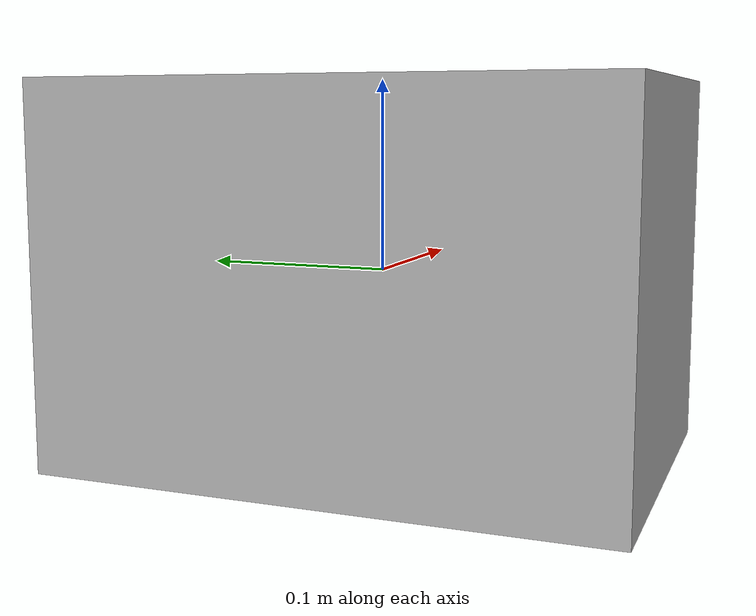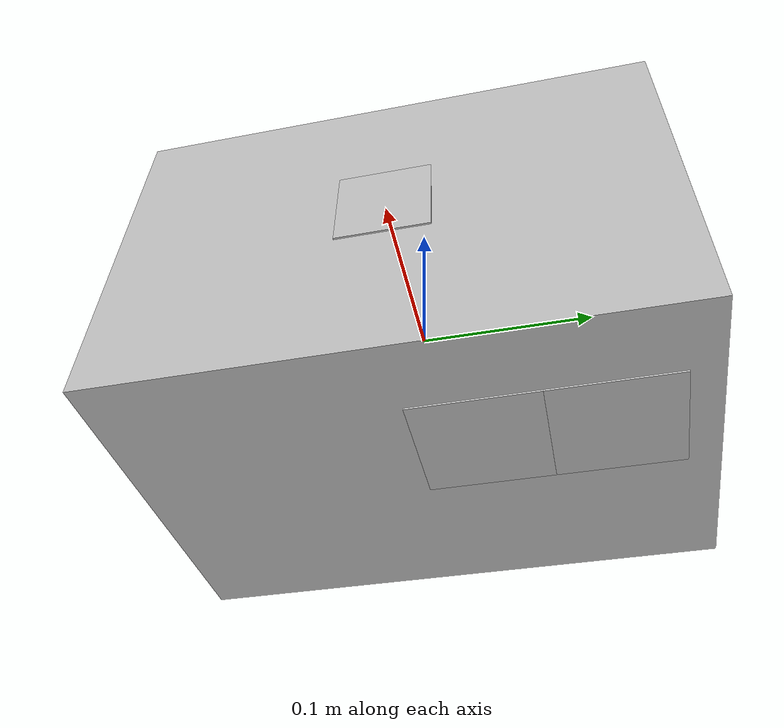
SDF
<?xml version="1.0" ?>
<sdf version="1.5">
  <model name="rei_block_stage">
    <static>false</static>
    <link name="block_stage_link">
      <inertial>
        <mass>10.0</mass>
        <inertia>
          <ixx>1</ixx>
          <ixy>0</ixy>
          <ixz>0</ixz>
          <iyy>1</iyy>
          <iyz>0</iyz>
          <izz>1</izz>
        </inertia>
      </inertial>
      <collision name="collision">
        <geometry>
          <box>
            <size>0.2 0.30 0.2</size>
          </box>
        </geometry>
      </collision>
      <visual name="visual_1">
        <pose>0 0 0.0 0 0 0</pose>
        <cast_shadows>false</cast_shadows>
        <geometry>
          <box>
            <size>0.2 0.30 0.2</size>
          </box>
        </geometry>
      </visual>
      <visual name="visual_2">
        <pose>0.105 0 0.0 0 -1.5707 0</pose>
        <cast_shadows>false</cast_shadows>
        <geometry>
          <box>
            <size>0.05 0.05 0.001</size>
          </box>
        </geometry>
        <material>
          <script>
            <uri>model://rei_block_stage/materials/scripts</uri>
            <uri>model://rei_block_stage/materials/textures</uri>
            <name>reinovo/rei_block_stage</name>
          </script>
        </material>
      </visual>
      <visual name="visual_3">
        <pose>0.03 0.10 -0.105 0 0 0</pose>
        <cast_shadows>false</cast_shadows>
        <geometry>
          <box>
            <size>0.065 0.065 0.001</size>
          </box>
        </geometry>
        <material>
          <script>
            <uri>model://rei_block_stage/materials_goal/scripts</uri>
            <uri>model://rei_block_stage/materials_goal/textures</uri>
            <name>reinovo/rei_goal</name>
          </script>
        </material>
      </visual>
      <visual name="visual_4">
        <pose>0.03 0.035 -0.105 0 0 0</pose>
        <cast_shadows>false</cast_shadows>
        <geometry>
          <box>
            <size>0.065 0.065 0.001</size>
          </box>
        </geometry>
        <material>
          <script>
            <uri>model://rei_block_stage/materials_goal/scripts</uri>
            <uri>model://rei_block_stage/materials_goal/textures</uri>
            <name>reinovo/rei_goal</name>
          </script>
        </material>
      </visual>
    </link>
  </model>
</sdf>
